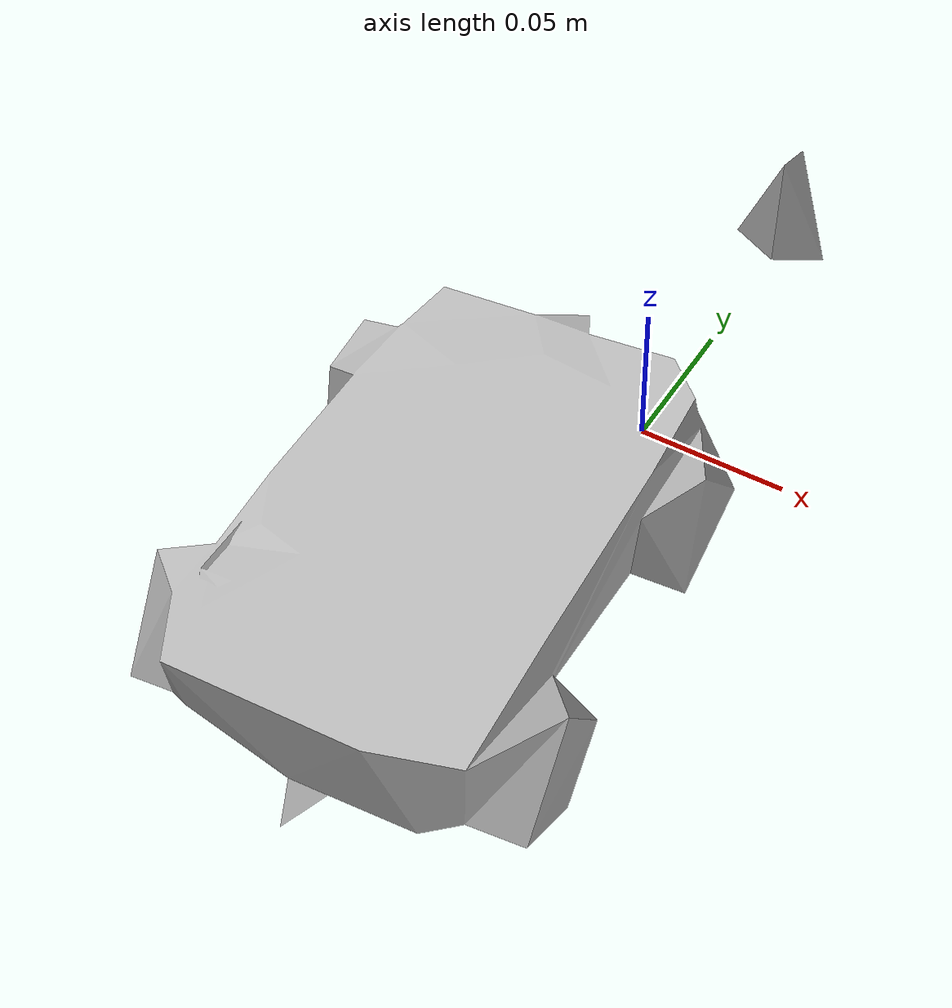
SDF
<?xml version='1.0'?>
<sdf version="1.4">
  <model name="073-g_lego_duplo">
    <static>false</static>
    <link name="link">
      <inertial>
        <pose>-0.01409875929509283 -0.05239082387097333 0.025749147163194076 -0.8459763997115247 1.5523900285944117 -2.459488883772906</pose>
        <mass>0.14522462882293166</mass>
        <inertia>
          <ixx>0.0008810834156959202</ixx>
          <ixy>-1.5781176619286045e-20</ixy>
          <ixz>8.013679247925666e-20</ixz>
          <iyy>0.0007700000426706546</iyy>
          <iyz>8.221662632535393e-21</iyz>
          <izz>0.00017763346928592575</izz>
        </inertia>
      </inertial>
      <collision name="collision">
        <geometry>
          <mesh>
            <!-- Use a downsampled mesh for collisions -->
            <uri>model:///073-g_lego_duplo/073-g_lego_duplo_250_collision.stl</uri>
	        </mesh>
        </geometry>
        <surface>
      </surface>
      </collision>
      <visual name="visual">
        <geometry>
          <mesh>
            <uri>model:///073-g_lego_duplo/textured.obj</uri>
	        </mesh>
        </geometry>
        <material>
          <script>
            <uri>model:///073-g_lego_duplo/073-g_lego_duplo.material</uri>
            <name>073-g_lego_duplo</name>
          </script>
        </material>
      </visual>
    </link>
  </model>
</sdf>
